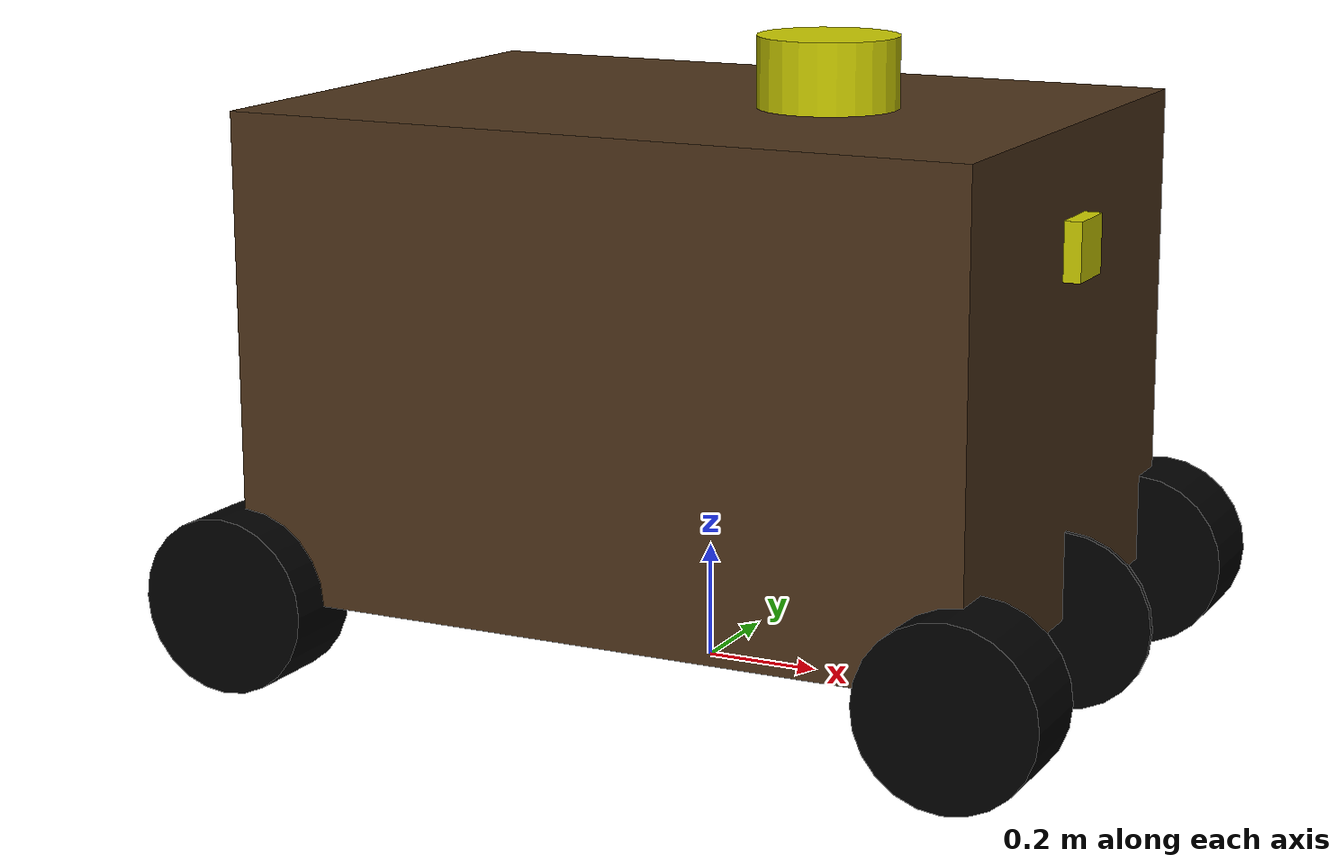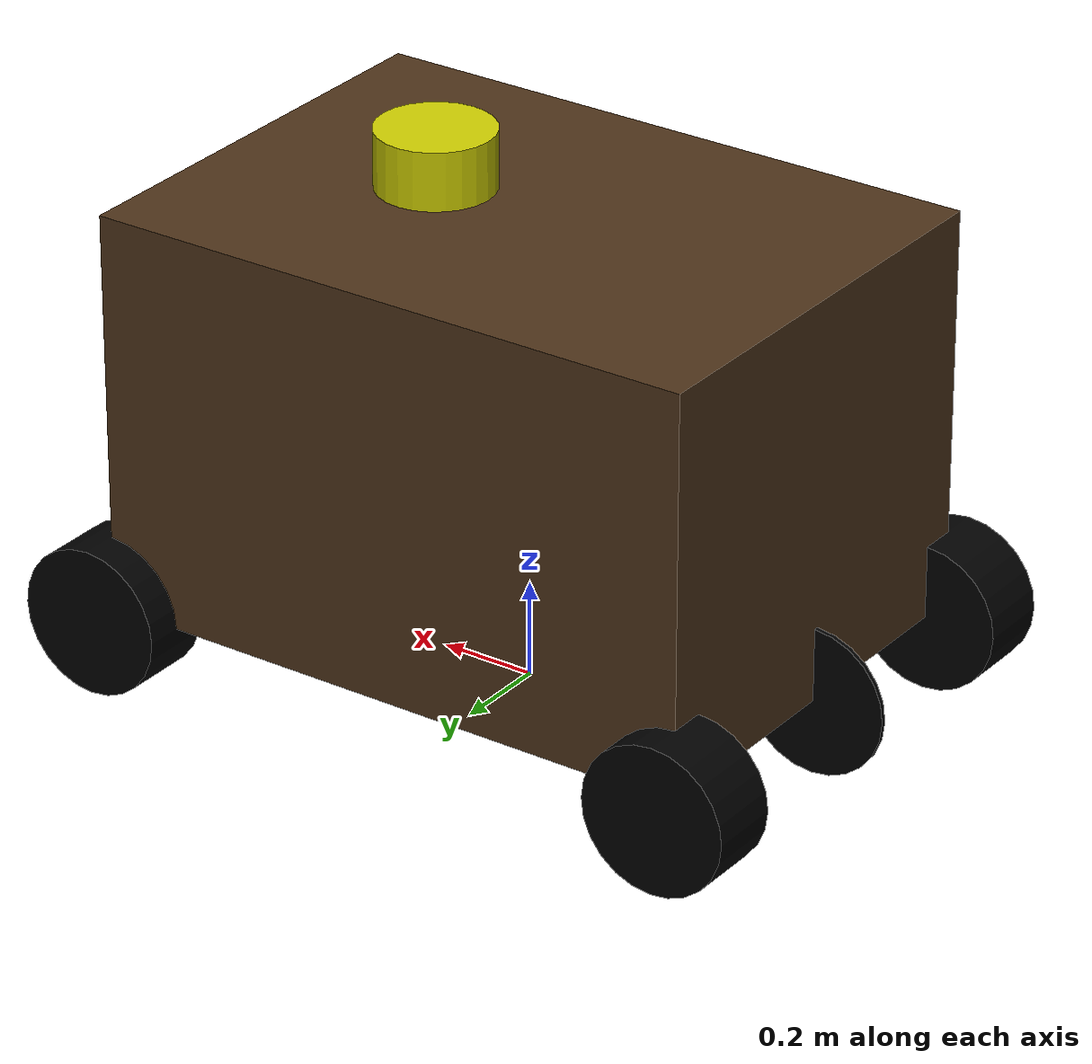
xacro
<?xml version="1.0"?>
<!-- 4 Wheel Robot with front steering and rear drive -->
<robot xmlns:xacro="http://www.ros.org/wiki/xacro" name="carlikebot_robot">
  <xacro:arg name="prefix" default="" />

  <xacro:include filename="$(find ackdrive_px4_mrover)/urdf/robot_core2_urdf.xacro" />

  <!-- Import Rviz colors -->

  <!-- Add Sensors -->
  <xacro:include filename="$(find ackdrive_px4_mrover)/urdf/sensors/camera.xacro" />
  <xacro:include filename="$(find ackdrive_px4_mrover)/urdf/sensors/lidar.xacro" />

  <!-- Import carlikebot ros2_control description -->
  <xacro:include filename="$(find ackdrive_px4_mrover)/ros2_control/carlikebot.ros2_control.xacro" />

  <xacro:carlikebot prefix="$(arg prefix)" />

  <xacro:carlikebot_ros2_control
    name="CarlikeBot" prefix="$(arg prefix)" />

</robot>

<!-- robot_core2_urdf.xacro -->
<robot xmlns:xacro="http://www.ros.org/wiki/xacro" >
  <xacro:include filename="$(find ackdrive_px4_mrover)/urdf/inertial_macros.xacro" />
  <material name="white">
    <color rgba="1 1 1 1" />
  </material>
  <material name="orange">
    <color rgba="1 0.3 0.1 1"/>
  </material>
  <material name="blue">
    <color rgba="0.2 0.2 1 1"/>
  </material>
  <material name="brown">
    <color rgba="0.3 0.2 0.1 1"/>
  </material>
  <material name="black">
    <color rgba="0 0 0 1"/>
  </material>
  <material name="invisible">
    <color rgba="0 0 0 0"/>
  </material>
	<xacro:macro name="carlikebot" params="prefix">
  <xacro:property name="PI" value="3.1415926535897931"/>
  <xacro:property name="base_mass" value="300" />
  <xacro:property name="base_width" value="0.94" />
  <xacro:property name="base_length" value="1.3" />
  <xacro:property name="base_height" value="0.83" />
  <xacro:property name="wheelbase" value="1.3" />
  <xacro:property name="wheel_mass" value="11" />
  <xacro:property name="wheel_len" value="0.1524" />
  <xacro:property name="wheel_radius" value="0.1527" />
  <xacro:property name="steer_radius" value="0.05" />
  <xacro:property name="steer_height" value="0.02" />
  <xacro:property name="steer_wheel_mass" value="24" />
  <xacro:property name="steer_effort" value="50000.0"/>
  <xacro:property name="steer_velocity" value="50.0"/>
  <xacro:property name="steer_limit_deg" value="22.5"/>
  <xacro:property name="deg_to_rad" value="0.01745329251994329577"/>
  <xacro:property name="steer_limit_rad" value="${steer_limit_deg * deg_to_rad}"/>
  <!-- Base Link -->
  <link name="${prefix}base_link" />
  <!-- Chassis -->
  <link name="${prefix}chassis_link">
    <collision>
        <origin xyz="0 0 0" rpy="0 0 0"/>
        <geometry>
            <box size="${base_length} ${base_width} ${base_height}"/>
        </geometry>
    </collision>
    <visual>
        <origin xyz="0 0 0" rpy="0 0 0"/>
        <geometry>
            <box size="${base_length} ${base_width} ${base_height}"/>
        </geometry>
        <material name="brown"/>
    </visual>
    <inertial>
        <origin xyz="0 0 0" rpy="0 0 0"/>
        <mass value="${base_mass}"/>
        <inertia ixx="1" ixy="0" ixz="0" iyy="1" iyz="0" izz="1"/>
    </inertial>
  </link>
  <joint name="${prefix}chassis_joint" type="fixed">
    <parent link="${prefix}base_link"/>
    <child link="${prefix}chassis_link"/>
    <origin xyz="0 0 ${base_height/2 + wheel_radius}" rpy="0 0 0"/>
  </joint>
  <!-- Virtual Rear Wheel -->
  <link name="${prefix}virtual_rear_wheel">
    <visual>
        <origin xyz="0 0 0" rpy="${PI/2} 0 ${PI/2}"/>
        <geometry>
            <cylinder length="0.01" radius="${wheel_radius}"/>
        </geometry>
        <material name="invisible"/>
    </visual>
  </link>
  <joint name="${prefix}virtual_rear_wheel_joint" type="continuous">
    <parent link="${prefix}chassis_link"/>
    <child link="${prefix}virtual_rear_wheel"/>
    <origin xyz="-${wheelbase/2} 0 -${base_height/2}" rpy="0 0 ${PI/2}"/>
    <axis xyz="1 0 0"/>
    <limit effort="100.0" velocity="100.0"/>
    <dynamics damping="0.2"/>
  </joint>
  <!-- Rear Right Wheel -->
  <link name="${prefix}rear_right_wheel">
    <collision>
        <origin xyz="0 0 0" rpy="${PI/2} 0 ${PI/2}"/>
        <geometry>
            <cylinder length="${wheel_len}" radius="${wheel_radius}"/>
        </geometry>
    </collision>
    <visual>
        <origin xyz="0 0 0" rpy="${PI/2} 0 ${PI/2}"/>
        <geometry>
            <cylinder length="${wheel_len}" radius="${wheel_radius}"/>
        </geometry>
        <material name="black"/>
    </visual>
    <inertial>
        <origin xyz="0 0 0" rpy="${PI/2} 0 ${PI/2}"/>
        <mass value="${wheel_mass}"/>
        <inertia ixx="1" ixy="0" ixz="0" iyy="1" iyz="0" izz="1"/>
    </inertial>
  </link>
  <joint name="${prefix}rear_right_wheel_joint" type="continuous">
    <parent link="${prefix}chassis_link"/>
    <child link="${prefix}rear_right_wheel"/>
    <origin xyz="-${wheelbase/2} ${base_width/2} -${base_height/2}" rpy="0 0 ${PI/2}"/>
    <axis xyz="1 0 0"/>
    <limit effort="100.0" velocity="100.0"/>
    <dynamics damping="0.2"/>
    <mimic joint="${prefix}virtual_rear_wheel_joint" multiplier="1.0" offset="0.0"/>
  </joint>
  <!-- Rear Left Wheel -->
  <link name="${prefix}rear_left_wheel">
    <collision>
        <origin xyz="0 0 0" rpy="${PI/2} 0 ${PI/2}"/>
        <geometry>
            <cylinder length="${wheel_len}" radius="${wheel_radius}"/>
        </geometry>
    </collision>
    <visual>
        <origin xyz="0 0 0" rpy="${PI/2} 0 ${PI/2}"/>
        <geometry>
            <cylinder length="${wheel_len}" radius="${wheel_radius}"/>
        </geometry>
        <material name="black"/>
    </visual>
    <inertial>
        <origin xyz="0 0 0" rpy="${PI/2} 0 ${PI/2}"/>
        <mass value="${wheel_mass}"/>
        <inertia ixx="1" ixy="0" ixz="0" iyy="1" iyz="0" izz="1"/>
    </inertial>
  </link>
  <joint name="${prefix}rear_left_wheel_joint" type="continuous">
    <parent link="${prefix}chassis_link"/>
    <child link="${prefix}rear_left_wheel"/>
    <origin xyz="-${wheelbase/2} -${base_width/2} -${base_height/2}" rpy="0 0 ${PI/2}"/>
    <axis xyz="1 0 0"/>
    <limit effort="100.0" velocity="100.0"/>
    <dynamics damping="0.2"/>
    <mimic joint="${prefix}virtual_rear_wheel_joint" multiplier="1.0" offset="0.0"/>
  </joint>
  <!-- Virtual Front Wheel -->
  <link name="${prefix}virtual_front_wheel">
    <visual>
        <origin xyz="0 0 0" rpy="${PI/2} 0 ${PI/2}"/>
        <geometry>
            <cylinder length="0.01" radius="${wheel_radius}"/>
        </geometry>
        <material name="invisible"/>
    </visual>
  </link>
  <joint name="${prefix}virtual_front_wheel_joint" type="revolute">
    <parent link="${prefix}chassis_link"/>
    <child link="${prefix}virtual_front_wheel"/>
    <origin xyz="${wheelbase/2} 0 -${base_height/2}" rpy="0 0 ${PI/2}"/>
    <axis xyz="0 0 1"/>
    <limit lower="-${steer_limit_rad}" upper="${steer_limit_rad}" effort="${steer_effort}" velocity="${steer_velocity}"/>
    <dynamics damping="0.2"/>
  </joint>
  <!-- Front Right Wheel -->
  <link name="${prefix}front_right_wheel">
    <collision>
      <origin xyz="0 0 0" rpy="${PI/2} 0 ${PI/2}"/>
      <geometry>
          <cylinder length="${wheel_len}" radius="${wheel_radius}"/>
      </geometry>
    </collision>
    <visual>
      <origin xyz="0 0 0" rpy="${PI/2} 0 ${PI/2}"/>
      <geometry>
          <cylinder length="${wheel_len}" radius="${wheel_radius}"/>
      </geometry>
      <material name="black"/>
    </visual>
    <inertial>
      <origin xyz="0 0 0" rpy="${PI/2} 0 ${PI/2}"/>
      <mass value="${wheel_mass}"/>
      <inertia ixx="1" ixy="0" ixz="0" iyy="1" iyz="0" izz="1"/>
    </inertial>
  </link>
  <joint name="${prefix}front_right_wheel_joint" type="revolute">
    <parent link="${prefix}chassis_link"/>
    <child link="${prefix}front_right_wheel"/>
    <origin xyz="${wheelbase/2} ${base_width/2} -${base_height/2}" rpy="0 0 ${PI/2}"/>
    <axis xyz="0 0 1"/>
    <limit lower="-${steer_limit_rad}" upper="${steer_limit_rad}" effort="${steer_effort}" velocity="${steer_velocity}"/>
    <dynamics damping="0.2"/>
    <mimic joint="${prefix}virtual_front_wheel_joint" multiplier="1.0" offset="0.0"/>
  </joint>
  <!-- Front Left Wheel -->
  <link name="${prefix}front_left_wheel">
    <collision>
        <origin xyz="0 0 0" rpy="${PI/2} 0 ${PI/2}"/>
        <geometry>
            <cylinder length="${wheel_len}" radius="${wheel_radius}"/>
        </geometry>
    </collision>
    <visual>
        <origin xyz="0 0 0" rpy="${PI/2} 0 ${PI/2}"/>
        <geometry>
            <cylinder length="${wheel_len}" radius="${wheel_radius}"/>
        </geometry>
        <material name="black"/>
    </visual>
    <inertial>
        <origin xyz="0 0 0" rpy="${PI/2} 0 ${PI/2}"/>
        <mass value="${wheel_mass}"/>
        <inertia ixx="1" ixy="0" ixz="0" iyy="1" iyz="0" izz="1"/>
    </inertial>
  </link>
  <joint name="${prefix}front_left_wheel_joint" type="revolute">
    <parent link="${prefix}chassis_link"/>
    <child link="${prefix}front_left_wheel"/>
    <origin xyz="${wheelbase/2} -${base_width/2} -${base_height/2}" rpy="0 0 ${PI/2}"/>
    <axis xyz="0 0 1"/>
    <limit lower="-${steer_limit_rad}" upper="${steer_limit_rad}" effort="${steer_effort}" velocity="${steer_velocity}"/>
    <dynamics damping="0.2"/>
    <mimic joint="${prefix}virtual_front_wheel_joint" multiplier="1.0" offset="0.0"/>
  </joint>
  </xacro:macro>

</robot>

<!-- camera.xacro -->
<robot xmlns:xacro="http://www.ros.org/wiki/xacro" >

    <!-- Camera properties -->
    <xacro:property name="hfov" value="1.089" />
    <xacro:property name="cam_width" value="640" />
    <xacro:property name="cam_lenght_d" value="0.03" />
    <xacro:property name="cam_height_d" value="0.10" />
    <xacro:property name="cam_width_d" value="0.10" />
    <xacro:property name="cam_height" value="480" />
    <xacro:property name="near" value="0.05" />
    <xacro:property name="far" value="8.0" />
    <xacro:property name="base_width" value="0.94" />
    <xacro:property name="base_length" value="1.3" />
    <xacro:property name="base_height" value="0.83" />
    <xacro:property name="wheelbase" value="1.3" />

    <joint name="camera_joint" type="fixed">
        <parent link="chassis_link"/>
        <child link="camera_link"/>
        <origin xyz="${base_length/2 + cam_lenght_d/2} 0 ${base_height/2 - 2*cam_height_d}" rpy="0 0 0"/>
    </joint>

    <link name="camera_link">
        <visual>
            <geometry>
                <box size="${cam_lenght_d} ${cam_width_d} ${cam_height_d}"/>
            </geometry>
            <material name="yellow"/>
        </visual>
    </link>

    <joint name="camera_optical_joint" type="fixed">
        <parent link="camera_link"/>
        <child link="camera_link_optical"/>
        <origin xyz="0 0 0" rpy="${-pi/2} 0 ${-pi/2}"/>
    </joint>

    <link name="camera_link_optical"></link>
    <gazebo reference="camera_link">
        <material>Gazebo/Red</material>
        <sensor name="camera" type="camera">
            <pose> 0 0 0 0 0 0 </pose>
            <visualize>true</visualize>
            <update_rate>10</update_rate>
            <camera>
                <horizontal_fov>${hfov}</horizontal_fov>
                <image>
                    <format>R8G8B8</format>
                    <width>${cam_width}</width>
                    <height>${cam_height}</height>
                </image>
                <clip>
                    <near>${near}</near>
                    <far>${far}</far>
                </clip>
            </camera>
            <plugin name="camera_controller" filename="libgazebo_ros_camera.so">
                <frame_name>camera_link_optical</frame_name>
            </plugin>
        </sensor>
    </gazebo>

</robot>

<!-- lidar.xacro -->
<robot xmlns:xacro="http://www.ros.org/wiki/xacro" >
    <material name="yellow">
        <color rgba="0.8 0.8 0 1"/>
    </material>
    <xacro:property name="lidar_lenght" value="0.12" />
    <xacro:property name="lidar_radius" value="0.12" />
    <xacro:property name="base_width" value="0.94" />
    <xacro:property name="base_length" value="1.3" />
    <xacro:property name="base_height" value="0.83" />
    <xacro:property name="wheelbase" value="1.3" />

    <joint name="laser_joint" type="fixed">
        <parent link="chassis_link"/>
        <child link="laser_frame"/>
        <origin xyz="${base_length/6} 0 ${base_height/2 + lidar_lenght/2}" rpy="0 0 0"/>
    </joint>

    <link name="laser_frame">
        <visual>
            <geometry>
                <cylinder radius="${lidar_radius}" length="${lidar_lenght}"/>
            </geometry>
            <material name="yellow"/>
        </visual>
        <collision>
            <geometry>
                <cylinder radius="${lidar_radius}" length="${lidar_lenght}"/>
            </geometry>
        </collision>
        <xacro:cylinder_inertia mass="0.1" R="${lidar_radius}" H="${lidar_lenght}"/>
    </link>

    <gazebo reference="laser_frame">
        <material>Gazebo/Black</material>
            <sensor name="laser" type="ray">
            <pose> 0 0 0 0 0 0 </pose>
            <visualize>false</visualize>
            <update_rate>10</update_rate>
            <ray>
                <scan>
                    <horizontal>
                        <samples>360</samples>
                        <min_angle>-3.14</min_angle>
                        <max_angle>3.14</max_angle>
                    </horizontal>
                </scan>
                <range>
                    <min>0.3</min>
                    <max>12</max>
                </range>
            </ray>
            <plugin name="laser_controller" filename="libgazebo_ros_ray_sensor.so">
                <ros>
                    <argument>~/out:=scan</argument>
                </ros>
                <output_type>sensor_msgs/LaserScan</output_type>
                <frame_name>laser_frame</frame_name>
            </plugin>
        </sensor>
    </gazebo>

</robot>
